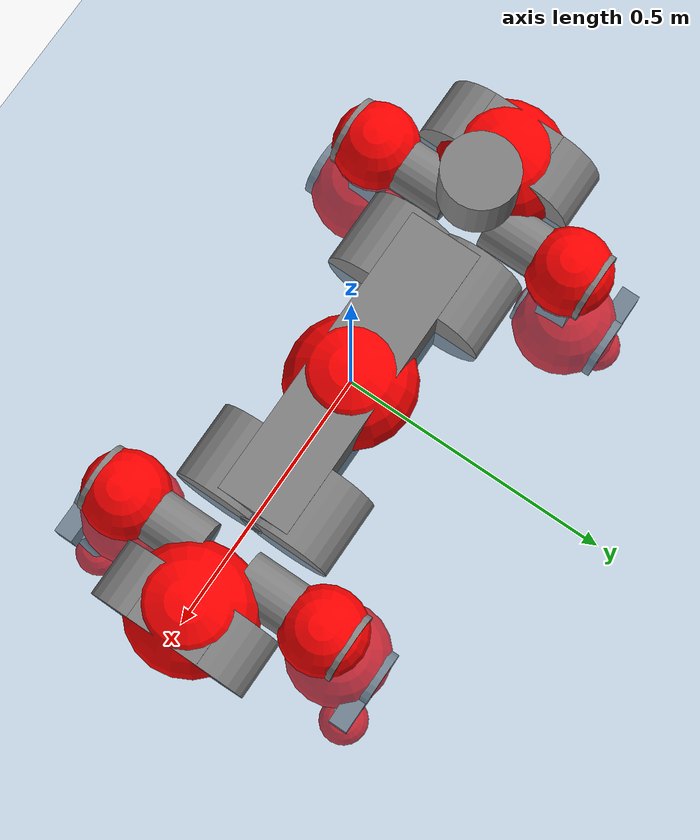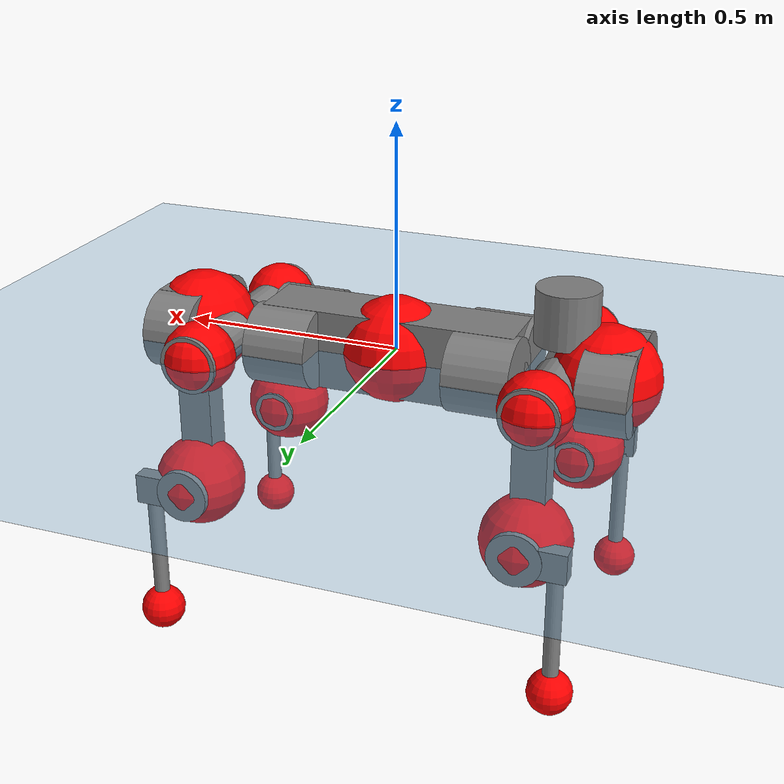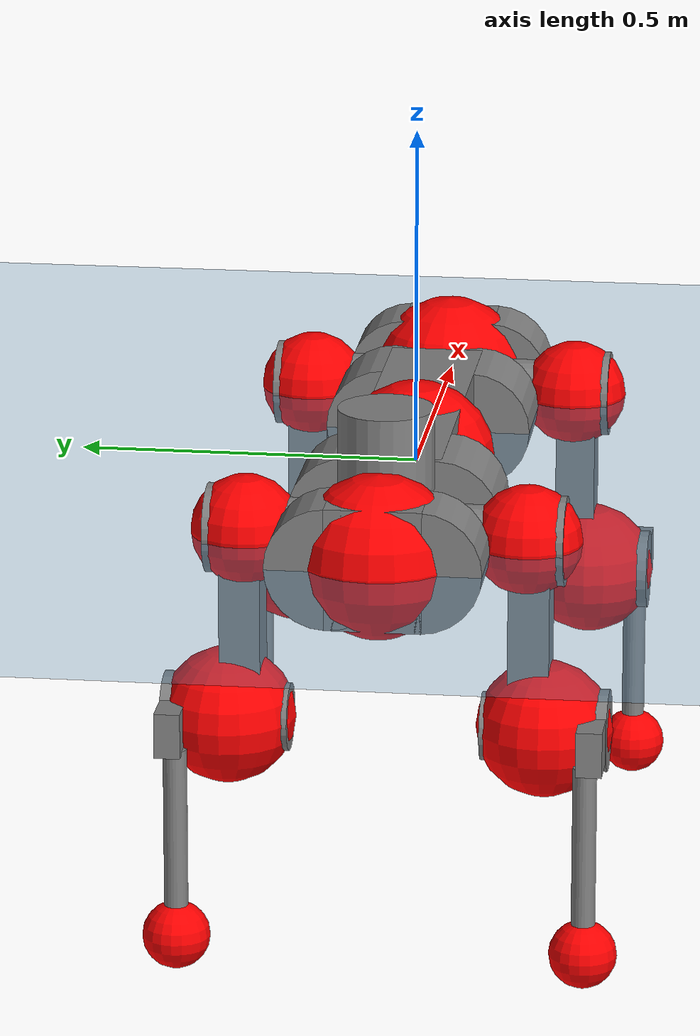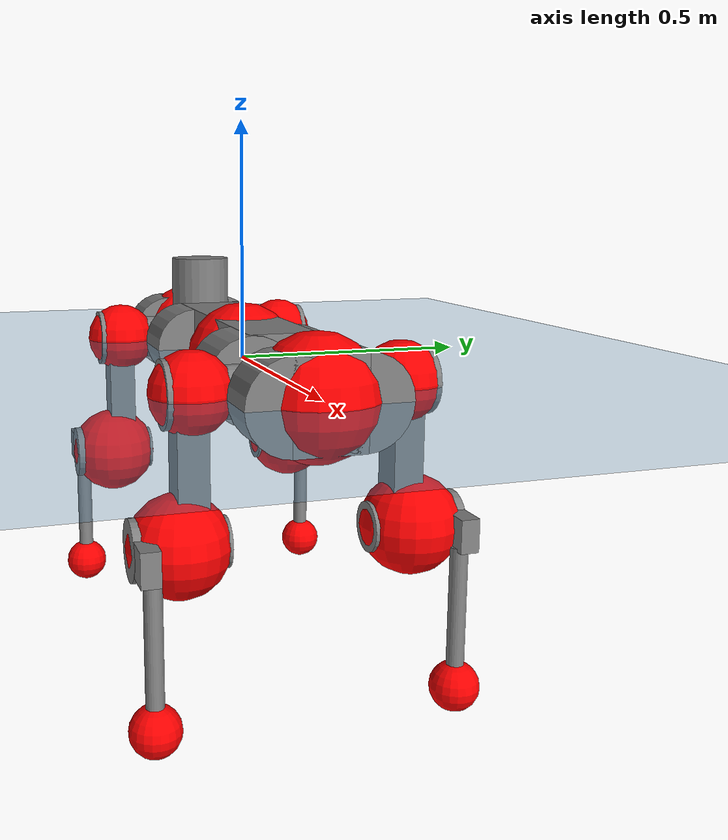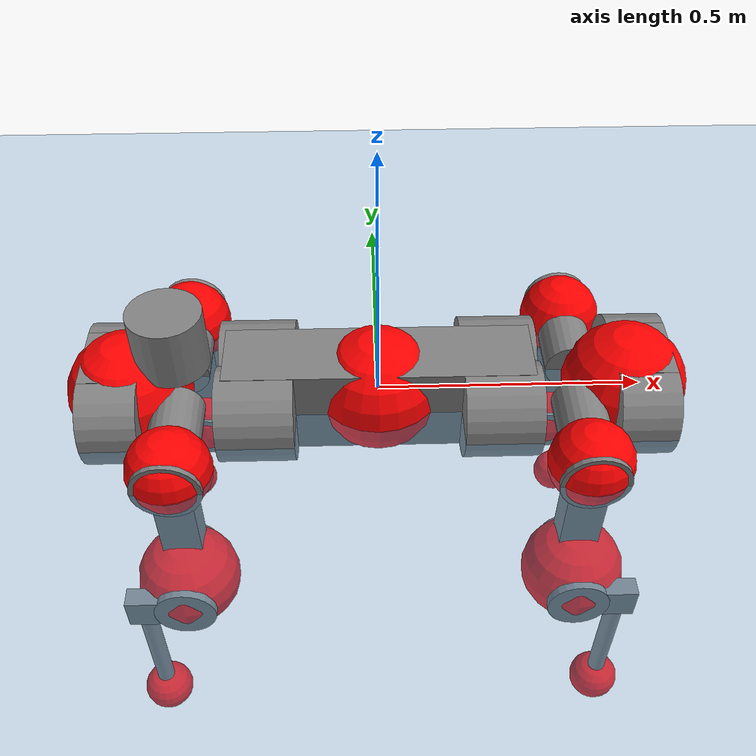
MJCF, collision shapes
<mujoco model="anymal_c">
  <compiler angle="radian" assetdir="assets" balanceinertia="true" inertiafromgeom="false"/>

  <option timestep="0.005" density="1.2" viscosity="2e-05"/>

  <size nkey="1"/>

  <visual>
    <quality shadowsize="8192"/>
    <map shadowclip="0.5"/>
  </visual>

  <default>
    <default class="/">
      <material specular="0" shininess="0.25"/>
      <geom contype="0" conaffinity="0" group="1" solref="-1000 -80"/>
      <site size="0.01 0.005 0.005" group="5"/>
      <general forcelimited="true" forcerange="-80 80" biastype="affine" gainprm="80" biasprm="0 -80 -2"/>
      <default class="anymal_c">
        <joint armature="0.01" damping="0.01" frictionloss="0.1"/>
        <default class="visual">
          <geom type="mesh" group="2"/>
          <default class="visual_zflip"/>
        </default>
        <default class="collision">
          <geom type="cylinder" group="3"/>
          <default class="foot">
            <geom size="0.03 0 0" type="sphere" condim="6" priority="1" friction="0.8 0.02 0.01" solimp="0.015 1 0.03"/>
          </default>
        </default>
      </default>
      <default class="reward_collision_sphere">
        <geom group="5" rgba="1 0 0 1"/>
      </default>
    </default>
  </default>

  <asset>
    <texture type="skybox" colorspace="auto" name="//unnamed_texture_0" builtin="gradient" rgb1="0.95 0.95 0.95" rgb2="0.95 0.95 0.95" width="100" height="600"/>
    <texture type="2d" colorspace="auto" name="texplane" builtin="checker" rgb1="0.345 0.575 0.748" rgb2="0.345 0.575 0.748" markrgb="1 1 1" width="512" height="512"/>
    <texture type="2d" colorspace="linear" name="base" file="base.png"/>
    <texture type="2d" colorspace="linear" name="top_shell" file="top_shell.png"/>
    <texture type="2d" colorspace="linear" name="bottom_shell" file="bottom_shell.png"/>
    <texture type="2d" colorspace="linear" name="remote" file="remote.png"/>
    <texture type="2d" colorspace="linear" name="hatch" file="hatch.png"/>
    <texture type="2d" colorspace="linear" name="handle" file="handle.png"/>
    <texture type="2d" colorspace="linear" name="face" file="face.png"/>
    <texture type="2d" colorspace="linear" name="battery" file="battery.png"/>
    <texture type="2d" colorspace="linear" name="lidar_cage" file="lidar_cage.png"/>
    <texture type="2d" colorspace="linear" name="depth_camera" file="depth_camera.png"/>
    <texture type="2d" colorspace="linear" name="wide_angle_camera" file="wide_angle_camera.png"/>
    <texture type="2d" colorspace="linear" name="lidar" file="lidar.png"/>
    <texture type="2d" colorspace="linear" name="drive" file="drive.png"/>
    <texture type="2d" colorspace="linear" name="hip_l" file="hip_l.png"/>
    <texture type="2d" colorspace="linear" name="shank_l" file="shank_l.png"/>
    <texture type="2d" colorspace="linear" name="foot" file="foot.png"/>
    <texture type="2d" colorspace="linear" name="thigh" file="thigh.png"/>
    <texture type="2d" colorspace="linear" name="shank_r" file="shank_r.png"/>
    <texture type="2d" colorspace="linear" name="hip_r" file="hip_r.png"/>
    <material name="MatPlane" class="/" texture="texplane" texuniform="true" texrepeat="2 2" specular="0.9" shininess="0.5"/>
    <material name="black_plastic" class="/" rgba="0.007 0.007 0.007 1"/>
    <material name="green" class="/" rgba="0.052 0.178 0.033 1"/>
    <material name="red" class="/" rgba="0.178 0.006 0.005 1"/>
    <material name="yellow" class="/" rgba="0.178 0.119 0.006 1"/>
    <material name="lwl" class="/" rgba="0.8 0.8 0.8 1"/>
    <material name="base" class="/" texture="base"/>
    <material name="top_shell" class="/" texture="top_shell"/>
    <material name="bottom_shell" class="/" texture="bottom_shell"/>
    <material name="hip_l" class="/" texture="hip_l"/>
    <material name="thigh" class="/" texture="thigh"/>
    <material name="shank_l" class="/" texture="shank_l"/>
    <material name="foot" class="/" texture="foot"/>
    <material name="hip_r" class="/" texture="hip_r"/>
    <material name="shank" class="/" texture="shank_r"/>
    <material name="hatch" class="/" texture="hatch"/>
    <material name="remote" class="/" texture="remote"/>
    <material name="handle" class="/" texture="handle"/>
    <material name="face" class="/" texture="face"/>
    <material name="depth_camera" class="/" texture="depth_camera"/>
    <material name="wide_angle_camera" class="/" texture="wide_angle_camera"/>
    <material name="battery" class="/" texture="battery"/>
    <material name="lidar_cage" class="/" texture="lidar_cage"/>
    <material name="lidar" class="/" texture="lidar"/>
    <material name="drive" class="/" texture="drive"/>
    <mesh name="base_0" class="/" file="base_0.obj"/>
    <mesh name="base_1" class="/" file="base_1.obj"/>
    <mesh name="base_2" class="/" file="base_2.obj"/>
    <mesh name="base_3" class="/" file="base_3.obj"/>
    <mesh name="base_4" class="/" file="base_4.obj"/>
    <mesh name="base_5" class="/" file="base_5.obj"/>
    <mesh name="top_shell" class="/" file="top_shell.obj"/>
    <mesh name="bottom_shell" class="/" file="bottom_shell.obj"/>
    <mesh name="remote" class="/" file="remote.obj"/>
    <mesh name="handle" class="/" file="handle.obj"/>
    <mesh name="face" class="/" file="face.obj"/>
    <mesh name="wide_angle_camera" class="/" file="wide_angle_camera.obj"/>
    <mesh name="depth_camera" class="/" file="depth_camera.obj"/>
    <mesh name="battery" class="/" file="battery.obj"/>
    <mesh name="lidar_cage" class="/" file="lidar_cage.obj"/>
    <mesh name="lidar" class="/" file="lidar.obj"/>
    <mesh name="drive" class="/" file="drive.obj"/>
    <mesh name="hip_l" class="/" file="hip_l.obj"/>
    <mesh name="thigh" class="/" file="thigh.obj"/>
    <mesh name="shank_l" class="/" file="shank_l.obj"/>
    <mesh name="foot" class="/" file="foot.obj"/>
    <mesh name="hip_r" class="/" file="hip_r.obj"/>
    <mesh name="hatch" class="/" file="hatch.obj"/>
    <mesh name="shank_r" class="/" file="shank_r.obj"/>
  </asset>

  <worldbody>
    <geom name="floor" class="/" size="100 100 0.125" type="plane" group="0" material="MatPlane"/>
    <light name="toplight_shadow" class="/" pos="0 0 5" dir="0.0990148 0.0990148 -0.990148" type="directional" ambient="0.04 0.04 0.04" diffuse="0.55 0.55 0.55" specular="0.12 0.12 0.12"/>
    <light name="toplight_fill" class="/" pos="0 0 5" dir="0.0990148 0.0990148 -0.990148" type="directional" castshadow="false" ambient="0.04 0.04 0.04" diffuse="0.3 0.3 0.3" specular="0.08 0.08 0.08"/>
    <body name="trunk" childclass="anymal_c" pos="0.000818934 0.000154772 0.000673359" quat="1 -4.24989e-05 0.000294623 0.000326401">
      <inertial pos="0.00325126 -0.000683032 0.0485735" quat="0.501897 0.499006 0.499647 0.499444" mass="18.39" diaginertia="0.789913 0.432138 0.207272"/>
      <joint name="//unnamed_joint_0" type="free" armature="0" damping="0" frictionloss="0"/>
      <geom name="//unnamed_geom_1" class="visual" material="green" mesh="base_0"/>
      <geom name="//unnamed_geom_2" class="visual" material="yellow" mesh="base_1"/>
      <geom name="//unnamed_geom_3" class="visual" material="red" mesh="base_2"/>
      <geom name="//unnamed_geom_4" class="visual" material="black_plastic" mesh="base_3"/>
      <geom name="//unnamed_geom_5" class="visual" material="lwl" mesh="base_4"/>
      <geom name="//unnamed_geom_6" class="visual" material="base" mesh="base_5"/>
      <geom name="trunk_1" class="collision" size="0.286084 0.0690548 0.0887848" type="box"/>
      <geom name="trunk_2" class="collision" size="0.0887848 0.0715211" pos="0.226595 0.0650515 0" quat="0.707107 0 0.707107 0"/>
      <geom name="trunk_3" class="collision" size="0.0887848 0.0715211" pos="-0.226595 0.0650515 0" quat="0.707107 0 0.707107 0"/>
      <geom name="trunk_4" class="collision" size="0.0887848 0.0715211" pos="0.226595 -0.0650515 0" quat="0.707107 0 0.707107 0"/>
      <geom name="trunk_5" class="collision" size="0.0887848 0.0715211" pos="-0.226595 -0.0650515 0" quat="0.707107 0 0.707107 0"/>
      <geom name="//unnamed_geom_12" class="visual" material="top_shell" mesh="top_shell"/>
      <geom name="//unnamed_geom_13" class="visual" material="bottom_shell" mesh="bottom_shell"/>
      <geom name="//unnamed_geom_14" class="visual" material="remote" mesh="remote"/>
      <geom name="//unnamed_geom_15" class="visual" material="handle" mesh="handle"/>
      <geom name="//unnamed_geom_16" class="visual" pos="0.431832 0 0" quat="1 0 0 0" material="face" mesh="face"/>
      <geom name="trunk_6" class="collision" size="0.0542574 0.0690548 0.0887848" pos="0.489132 0 0" type="box"/>
      <geom name="//unnamed_geom_18" class="collision" size="0.0887848 0.0542574" pos="0.489132 0.0650515 0" quat="0.707107 0 0.707107 0"/>
      <geom name="//unnamed_geom_19" class="collision" size="0.0887848 0.0542574" pos="0.489132 -0.0650515 0" quat="0.707107 0 0.707107 0"/>
      <geom name="//unnamed_geom_20" class="visual" pos="0.480952 0 -0.0284543" quat="0.965926 0 0.258819 0" material="depth_camera" mesh="depth_camera"/>
      <geom name="//unnamed_geom_21" class="visual" pos="0.534451 0 0.0147959" material="wide_angle_camera" mesh="wide_angle_camera"/>
      <geom name="//unnamed_geom_22" class="visual_zflip" pos="-0.431832 0 0" quat="0 0 0 1" material="face" mesh="face"/>
      <geom name="trunk_7" class="collision" size="0.0542574 0.0690548 0.0887848" pos="-0.489132 0 0" quat="0 0 0 1" type="box"/>
      <geom name="//unnamed_geom_24" class="collision" size="0.0887848 0.0542574" pos="-0.489132 -0.0650515 0" quat="0 -0.707107 0 0.707107"/>
      <geom name="//unnamed_geom_25" class="collision" size="0.0887848 0.0542574" pos="-0.489132 0.0650515 0" quat="0 -0.707107 0 0.707107"/>
      <geom name="//unnamed_geom_26" class="visual" pos="-0.480952 0 -0.0284543" quat="0 -0.258819 0 0.965926" material="depth_camera" mesh="depth_camera"/>
      <geom name="//unnamed_geom_27" class="visual_zflip" pos="-0.534451 0 0.0147959" quat="0 0 0 1" material="wide_angle_camera" mesh="wide_angle_camera"/>
      <geom name="//unnamed_geom_28" class="visual" material="battery" mesh="battery"/>
      <geom name="//unnamed_geom_29" class="visual" pos="0 0.0695762 0.0291184" quat="0.683013 -0.183013 0.183013 0.683013" material="depth_camera" mesh="depth_camera"/>
      <geom name="//unnamed_geom_30" class="visual" pos="0 -0.0695762 0.0291184" quat="0.683013 0.183013 0.183013 -0.683013" material="depth_camera" mesh="depth_camera"/>
      <geom name="//unnamed_geom_31" class="visual" pos="-0.379221 0 0.0726453" quat="1 0 0 0" material="lidar_cage" mesh="lidar_cage"/>
      <geom name="trunk_8" class="collision" size="0.0690548 0.0591899" pos="-0.379221 0 0.131948"/>
      <geom name="//unnamed_geom_33" class="visual" pos="-0.379221 -4.42016e-05 0.140546" quat="0.707107 0 0 -0.707107" material="lidar" mesh="lidar"/>
      <geom name="//unnamed_geom_34" class="visual" pos="0.31244 0.0966689 -1.01887e-09" quat="0.258819 0.965926 0 0" material="drive" mesh="drive"/>
      <geom name="//unnamed_geom_35" class="visual" pos="0.31244 -0.0966689 1.01887e-09" quat="0.258819 -0.965926 0 0" material="drive" mesh="drive"/>
      <geom name="//unnamed_geom_36" class="visual" pos="-0.31244 0.0966689 1.01887e-09" quat="0 0 0.965926 -0.258819" material="drive" mesh="drive"/>
      <geom name="//unnamed_geom_37" class="visual" pos="-0.31244 -0.0966689 -1.01887e-09" quat="0 0 -0.965926 -0.258819" material="drive" mesh="drive"/>
      <geom name="//unnamed_geom_38" class="visual" pos="0.120851 0 0.0721511" quat="1 0 0 0" material="hatch" mesh="hatch"/>
      <geom name="//unnamed_geom_39" class="reward_collision_sphere" size="0.11838"/>
      <geom name="//unnamed_geom_40" class="reward_collision_sphere" size="0.11838" pos="0.468817 0 0"/>
      <geom name="//unnamed_geom_41" class="reward_collision_sphere" size="0.11838" pos="-0.468817 0 0"/>
      <site name="imu" pos="0.255201 0.00378744 0.0457877" size="0.00986498"/>
      <camera name="track" pos="0 -1.85861 0" quat="0.707107 0.707107 0 0" mode="trackcom"/>
      <camera name="ego_camera" pos="0.468817 0 -0.0395348" quat="-0.5 -0.5 0.5 0.5"/>
      <body name="LF_HIP" pos="0.313011 0.0971636 0.000631393" quat="0.258912 0.965901 0.000208673 4.90564e-05">
        <inertial pos="0.0597665 -0.0142567 -0.00845607" quat="-0.125513 0.707909 -0.136237 0.68158" mass="2.67384" diaginertia="0.00719862 0.0034092 0.0030824"/>
        <joint name="LF_HAA" pos="0 0 0" axis="0.999997 0.00244893 -0.000475027" range="-0.717848 0.49242" armature="0.00951795" damping="0.00934785" frictionloss="0.0974445"/>
        <geom name="//unnamed_geom_42" class="visual" pos="0 -5.99357e-05 9.84439e-06" quat="0.258819 -0.965926 0 0" material="hip_l" mesh="hip_l"/>
        <geom name="//unnamed_geom_43" class="visual" pos="0.0624047 -0.0741562 -0.043251" quat="0.183013 -0.683013 0.683013 0.183013" material="drive" mesh="drive"/>
        <geom name="//unnamed_geom_44" class="collision" size="0.0493249 0.0690548" pos="0.0624047 -0.0111143 -0.0068247" quat="-0.353553 -0.612372 0.612372 -0.353553"/>
        <body name="LF_THIGH" pos="0.0626871 -0.0675079 -0.0406103" quat="0.18305 -0.682969 0.68304 0.183037">
          <inertial pos="0.0322519 -2.50663e-05 -0.243582" quat="0.993096 -0.00356497 -0.0810198 0.0847494" mass="2.92635" diaginertia="0.03719 0.0208694 0.00395818"/>
          <joint name="LF_HFE" pos="0 0 0" axis="0.999999 -0.00109519 9.48043e-05" range="-3.14138 3.14888" armature="0.0101015" damping="0.00425375" frictionloss="0.0985534"/>
          <geom name="//unnamed_geom_45" class="visual" pos="0.00223848 3.52732e-06 0" quat="0.707107 0 0 -0.707107" material="thigh" mesh="thigh"/>
          <geom name="//unnamed_geom_46" class="collision" size="0.0641223 0.0394599" pos="0.0416726 0 0" quat="0.5 0.5 -0.5 -0.5"/>
          <geom name="//unnamed_geom_47" class="collision" size="0.0369937 0.0295949 0.139406" pos="0.0312545 0 -0.139671" quat="0.707107 0 0 -0.707107" type="box"/>
          <geom name="//unnamed_geom_48" class="visual" pos="0.104494 0 -0.281686" quat="1 0 0 0" material="drive" mesh="drive"/>
          <geom name="//unnamed_geom_49" class="collision" size="0.0493249 0.0690548" pos="0.031567 0 -0.281686" quat="0.707107 0 0.707107 0"/>
          <geom name="//unnamed_geom_50" class="reward_collision_sphere" size="0.0789198" pos="0.0260454 0 0"/>
          <body name="LF_SHANK" pos="0.105487 0.000216293 -0.282545" quat="1 1.9188e-06 -1.57377e-06 1.14161e-06">
            <inertial pos="0.00531822 -0.0561263 -0.0806187" quat="0.992928 -0.115933 -0.000992933 -0.0255378" mass="0.566689" diaginertia="0.0123707 0.00637953 0.00105907"/>
            <joint name="LF_KFE" pos="0 0 0" axis="1 -0.000485569 -0.00030091" range="-3.15777 3.14289" armature="0.00987478" damping="0.00911061" frictionloss="0.0986353"/>
            <geom name="//unnamed_geom_51" class="visual" pos="0.000729919 0.00389197 0" quat="0.707107 0 0 -0.707107" material="shank_l" mesh="shank_l"/>
            <geom name="LF_kfe_act" class="collision" size="0.0591899 0.01973" pos="0.0208363 0 0" quat="0.5 0.5 -0.5 -0.5"/>
            <geom name="//unnamed_geom_53" class="collision" size="0.0567226 0.0332943 0.0187435" pos="0.0208363 -0.0534342 0" quat="0.5 0.5 -0.5 -0.5" type="box"/>
            <geom name="//unnamed_geom_54" class="visual" pos="0.0135955 -0.0804783 -0.33404" quat="0.382683 0 0 -0.92388" material="foot" mesh="foot"/>
            <geom name="LF_calf" class="collision" size="0.0172637 0.139345" pos="0.0135957 -0.0817325 -0.16702" quat="0.707107 0 0 -0.707107"/>
            <geom name="LF_foot" class="foot" size="0.0294061" pos="0.0135957 -0.0817325 -0.311801" quat="0.707107 0 0 -0.707107"/>
            <geom name="//unnamed_geom_57" class="reward_collision_sphere" size="0.0986498" pos="-0.0520908 0 0"/>
            <geom name="//unnamed_geom_58" class="reward_collision_sphere" size="0.0493249" pos="0.0135957 -0.0817325 -0.311801"/>
            <site name="LF_foot" class="foot" pos="0.0135957 -0.0817325 -0.311801" quat="0.707107 0 0 -0.707107" size="0.00986498"/>
          </body>
        </body>
      </body>
      <body name="RF_HIP" pos="0.312216 -0.0980378 0.000222837" quat="0.25878 -0.965936 -3.52167e-05 1.83185e-05">
        <inertial pos="0.0587123 0.0154564 -0.00807723" quat="0.135166 0.679154 0.127448 0.710097" mass="2.68027" diaginertia="0.00728079 0.00340942 0.0031299"/>
        <joint name="RF_HAA" pos="0 0 0" axis="0.999999 0.000689092 0.00100184" range="-0.5085 0.717185" armature="0.00987899" damping="0.00874005" frictionloss="0.099231"/>
        <geom name="//unnamed_geom_59" class="visual" pos="0 5.99352e-05 9.84436e-06" quat="0.258819 0.965926 0 0" material="hip_r" mesh="hip_r"/>
        <geom name="//unnamed_geom_60" class="visual" pos="0.0624047 0.0741562 -0.043251" quat="0.183013 0.683013 0.683013 -0.183013" material="drive" mesh="drive"/>
        <geom name="//unnamed_geom_61" class="collision" size="0.0493249 0.0690548" pos="0.0624047 0.0111143 -0.0068247" quat="-0.353553 0.612372 0.612372 0.353553"/>
        <body name="RF_THIGH" pos="0.0621052 0.0675226 -0.0408052" quat="0.182993 0.683022 0.683017 -0.182982">
          <inertial pos="0.0320601 -2.99042e-05 -0.242895" quat="0.993044 -0.00226436 -0.0811041 0.085326" mass="2.96605" diaginertia="0.0375733 0.0207851 0.00395826"/>
          <joint name="RF_HFE" pos="0 0 0" axis="1 0.000351661 0.00072316" stiffness="0.00609973" range="-3.14681 3.12813" armature="0.0101549" damping="0.0101781" frictionloss="0.101063"/>
          <geom name="//unnamed_geom_62" class="visual" pos="0.00223848 3.52732e-06 0" quat="0.707107 0 0 -0.707107" material="thigh" mesh="thigh"/>
          <geom name="//unnamed_geom_63" class="collision" size="0.0641223 0.0394599" pos="0.0416726 0 0" quat="0.5 0.5 0.5 0.5"/>
          <geom name="//unnamed_geom_64" class="collision" size="0.0369937 0.0295949 0.139406" pos="0.0312545 0 -0.139671" quat="0.707107 0 0 0.707107" type="box"/>
          <geom name="//unnamed_geom_65" class="visual" pos="0.104494 0 -0.281686" quat="1 0 0 0" material="drive" mesh="drive"/>
          <geom name="//unnamed_geom_66" class="collision" size="0.0493249 0.0690548" pos="0.031567 0 -0.281686" quat="0.707107 0 0.707107 0"/>
          <geom name="//unnamed_geom_67" class="reward_collision_sphere" size="0.0789198" pos="0.0260454 0 0"/>
          <body name="RF_SHANK" pos="0.104299 0.000163122 -0.28176" quat="1 7.66825e-06 5.51845e-06 4.22821e-06">
            <inertial pos="0.00638858 0.0568957 -0.0785749" quat="0.992891 0.115426 0.000254905 0.0290436" mass="0.563118" diaginertia="0.0122877 0.00638745 0.00104395"/>
            <joint name="RF_KFE" pos="0 0 0" axis="0.999998 -0.00147773 -0.00113247" range="-3.14292 3.15194" armature="0.00949942" damping="0.00911029" frictionloss="0.0984687"/>
            <geom name="//unnamed_geom_68" class="visual" pos="0.000729915 -0.00389196 0" quat="0.707107 0 0 0.707107" material="shank" mesh="shank_r"/>
            <geom name="RF_kfe_act" class="collision" size="0.0591899 0.01973" pos="0.0208363 0 0" quat="0.5 0.5 0.5 0.5"/>
            <geom name="//unnamed_geom_70" class="collision" size="0.0567226 0.0332943 0.0187435" pos="0.0208363 0.0534342 0" quat="0.5 0.5 0.5 0.5" type="box"/>
            <geom name="//unnamed_geom_71" class="visual" pos="0.0135959 0.0804783 -0.33404" quat="0.382683 0 0 0.92388" material="foot" mesh="foot"/>
            <geom name="RF_calf" class="collision" size="0.0172637 0.139345" pos="0.0135957 0.0817325 -0.16702" quat="0.707107 0 0 0.707107"/>
            <geom name="RF_foot" class="foot" size="0.0299355" pos="0.0135957 0.0817325 -0.311801" quat="0.707107 0 0 0.707107"/>
            <geom name="//unnamed_geom_74" class="reward_collision_sphere" size="0.0986498" pos="-0.0520908 0 0"/>
            <geom name="//unnamed_geom_75" class="reward_collision_sphere" size="0.0493249" pos="0.0135957 0.0817325 -0.311801"/>
            <site name="RF_foot" class="foot" pos="0.0135957 0.0817325 -0.311801" quat="0.707107 0 0 0.707107" size="0.00986498"/>
          </body>
        </body>
      </body>
      <body name="LH_HIP" pos="-0.312049 0.0972293 0.000398583" quat="-4.31788e-05 -7.2025e-05 0.96593 -0.258805">
        <inertial pos="0.0593262 0.0142884 -0.00824273" quat="0.134972 0.678979 0.127798 0.710237" mass="2.67006" diaginertia="0.00716651 0.00344795 0.00309267"/>
        <joint name="LH_HAA" pos="0 0 0" axis="0.999999 -5.81802e-05 -0.00134947" range="-0.482483 0.722483" armature="0.00979276" damping="0.0134016" frictionloss="0.0984689"/>
        <geom name="//unnamed_geom_76" class="visual" pos="0 5.99352e-05 9.84436e-06" quat="-0.258819 -0.965926 0 0" material="hip_r" mesh="hip_r"/>
        <geom name="//unnamed_geom_77" class="visual" pos="0.0624047 0.0741562 -0.043251" quat="0.183013 0.683013 0.683013 -0.183013" material="drive" mesh="drive"/>
        <geom name="//unnamed_geom_78" class="collision" size="0.0493249 0.0690548" pos="0.0624047 0.0111143 -0.0068247" quat="-0.353553 0.612372 0.612372 0.353553"/>
        <body name="LH_THIGH" pos="0.061808 0.066917 -0.0413596" quat="0.182919 0.683044 0.682977 -0.183122">
          <inertial pos="0.0323396 7.42755e-05 -0.243369" quat="0.992742 -0.0051177 -0.0805489 0.0891528" mass="2.92192" diaginertia="0.0368813 0.0206575 0.00393115"/>
          <joint name="LH_HFE" pos="0 0 0" axis="1 8.26868e-06 -0.000311773" stiffness="0.00156198" range="-3.14149 3.12999" armature="0.00981952" damping="0.00979013" frictionloss="0.0976549"/>
          <geom name="//unnamed_geom_79" class="visual" pos="0.00223848 3.52732e-06 0" quat="0.707107 0 0 -0.707107" material="thigh" mesh="thigh"/>
          <geom name="//unnamed_geom_80" class="collision" size="0.0641223 0.0394599" pos="0.0416726 0 0" quat="0.5 0.5 -0.5 -0.5"/>
          <geom name="//unnamed_geom_81" class="collision" size="0.0369937 0.0295949 0.139406" pos="0.0312545 0 -0.139671" quat="0.707107 0 0 -0.707107" type="box"/>
          <geom name="//unnamed_geom_82" class="visual" pos="0.104494 0 -0.281686" quat="1 0 0 0" material="drive" mesh="drive"/>
          <geom name="//unnamed_geom_83" class="collision" size="0.0493249 0.0690548" pos="0.031567 0 -0.281686" quat="0.707107 0 0.707107 0"/>
          <geom name="//unnamed_geom_84" class="reward_collision_sphere" size="0.0789198" pos="0.0260454 0 0"/>
          <body name="LH_SHANK" pos="0.105166 -0.000975147 -0.281233" quat="1 3.67227e-05 -2.48609e-05 9.8321e-05">
            <inertial pos="0.00486791 0.0577534 -0.0805358" quat="0.992794 0.117298 0.00123786 0.0244791" mass="0.569065" diaginertia="0.0124613 0.00637332 0.00105276"/>
            <joint name="LH_KFE" pos="0 0 0" axis="1 -0.000354621 0.000150479" range="-3.13899 3.13988" armature="0.00992233" damping="0.0107599" frictionloss="0.0944949"/>
            <geom name="//unnamed_geom_85" class="visual" pos="0.000729915 -0.00389196 0" quat="-0.707107 0 0 -0.707107" material="shank" mesh="shank_r"/>
            <geom name="LH_kfe_act" class="collision" size="0.0591899 0.01973" pos="0.0208363 0 0" quat="0.5 0.5 -0.5 -0.5"/>
            <geom name="//unnamed_geom_87" class="collision" size="0.0567226 0.0332943 0.0187435" pos="0.0208363 0.0534342 0" quat="0.5 0.5 -0.5 -0.5" type="box"/>
            <geom name="//unnamed_geom_88" class="visual" pos="0.0135959 0.0804783 -0.33404" quat="-0.382683 0 0 -0.92388" material="foot" mesh="foot"/>
            <geom name="LH_calf" class="collision" size="0.0172637 0.139345" pos="0.0135957 0.0817325 -0.16702" quat="0.707107 0 0 -0.707107"/>
            <geom name="LH_foot" class="foot" size="0.0308097" pos="0.0135957 0.0817325 -0.311801" quat="0.707107 0 0 -0.707107"/>
            <geom name="//unnamed_geom_91" class="reward_collision_sphere" size="0.0986498" pos="-0.0520908 0 0"/>
            <geom name="//unnamed_geom_92" class="reward_collision_sphere" size="0.0493249" pos="0.0135957 0.0817325 -0.311801"/>
            <site name="LH_foot" class="foot" pos="0.0135957 0.0817325 -0.311801" quat="0.707107 0 0 -0.707107" size="0.00986498"/>
          </body>
        </body>
      </body>
      <body name="RH_HIP" pos="-0.312384 -0.0964797 -5.97945e-05" quat="-7.61776e-05 3.28442e-05 -0.965909 -0.258883">
        <inertial pos="0.0592166 -0.0144615 -0.00756979" quat="-0.127969 0.709749 -0.135262 0.6794" mass="2.63707" diaginertia="0.00710705 0.0033661 0.00307814"/>
        <joint name="RH_HAA" pos="0 0 0" axis="1 0.000355232 -0.000164972" range="-0.722183 0.503354" armature="0.0102762" damping="0.0106133" frictionloss="0.098689"/>
        <geom name="//unnamed_geom_93" class="visual" pos="0 -5.99357e-05 9.84439e-06" quat="-0.258819 0.965926 0 0" material="hip_l" mesh="hip_l"/>
        <geom name="//unnamed_geom_94" class="visual" pos="0.0624047 -0.0741562 -0.043251" quat="-0.183013 0.683013 -0.683013 -0.183013" material="drive" mesh="drive"/>
        <geom name="//unnamed_geom_95" class="collision" size="0.0493249 0.0690548" pos="0.0624047 -0.0111143 -0.0068247" quat="0.353553 0.612372 -0.612372 0.353553"/>
        <body name="RH_THIGH" pos="0.0627536 -0.067651 -0.0414498" quat="-0.18304 0.683028 -0.68297 -0.183089">
          <inertial pos="0.0331964 -0.000864983 -0.242706" quat="0.99313 -0.00505366 -0.0806294 0.0846506" mass="2.98457" diaginertia="0.037119 0.0209018 0.00394408"/>
          <joint name="RH_HFE" pos="0 0 0" axis="0.999996 -6.027e-05 0.00279722" range="-3.14449 3.14424" armature="0.00986117" damping="0.00770434" frictionloss="0.100943"/>
          <geom name="//unnamed_geom_96" class="visual" pos="0.00223848 3.52732e-06 0" quat="0.707107 0 0 -0.707107" material="thigh" mesh="thigh"/>
          <geom name="//unnamed_geom_97" class="collision" size="0.0641223 0.0394599" pos="0.0416726 0 0" quat="0.5 0.5 0.5 0.5"/>
          <geom name="//unnamed_geom_98" class="collision" size="0.0369937 0.0295949 0.139406" pos="0.0312545 0 -0.139671" quat="0.707107 0 0 0.707107" type="box"/>
          <geom name="//unnamed_geom_99" class="visual" pos="0.104494 0 -0.281686" quat="1 0 0 0" material="drive" mesh="drive"/>
          <geom name="//unnamed_geom_100" class="collision" size="0.0493249 0.0690548" pos="0.031567 0 -0.281686" quat="0.707107 0 0.707107 0"/>
          <geom name="//unnamed_geom_101" class="reward_collision_sphere" size="0.0789198" pos="0.0260454 0 0"/>
          <body name="RH_SHANK" pos="0.10441 0.000309321 -0.281646" quat="1 -0.000154405 -4.24053e-05 -0.000113433">
            <inertial pos="0.00579662 -0.0568696 -0.0796344" quat="0.992915 -0.11584 -0.000622388 -0.0264608" mass="0.576251" diaginertia="0.0125344 0.00649486 0.00106326"/>
            <joint name="RH_KFE" pos="0 0 0" axis="0.999973 -0.00324904 0.00653227" range="-3.12664 3.11933" armature="0.0101108" damping="0.00157169" frictionloss="0.0976259"/>
            <geom name="//unnamed_geom_102" class="visual" pos="0.000729919 0.00389197 0" quat="0.707107 0 0 -0.707107" material="shank_l" mesh="shank_l"/>
            <geom name="RH_kfe_act" class="collision" size="0.0591899 0.01973" pos="0.0208363 0 0" quat="0.5 0.5 0.5 0.5"/>
            <geom name="//unnamed_geom_104" class="collision" size="0.0567226 0.0332943 0.0187435" pos="0.0208363 -0.0534342 0" quat="0.5 0.5 0.5 0.5" type="box"/>
            <geom name="//unnamed_geom_105" class="visual" pos="0.0135955 -0.0804783 -0.33404" quat="0.382683 0 0 -0.92388" material="foot" mesh="foot"/>
            <geom name="RH_calf" class="collision" size="0.0172637 0.139345" pos="0.0135957 -0.0817325 -0.16702" quat="0.707107 0 0 0.707107"/>
            <geom name="RH_foot" class="foot" size="0.0280501" pos="0.0135957 -0.0817325 -0.311801" quat="0.707107 0 0 0.707107"/>
            <geom name="//unnamed_geom_108" class="reward_collision_sphere" size="0.0986498" pos="-0.0520908 0 0"/>
            <geom name="//unnamed_geom_109" class="reward_collision_sphere" size="0.0493249" pos="0.0135957 -0.0817325 -0.311801"/>
            <site name="RH_foot" class="foot" pos="0.0135957 -0.0817325 -0.311801" quat="0.707107 0 0 0.707107" size="0.00986498"/>
          </body>
        </body>
      </body>
    </body>
  </worldbody>

  <contact>
    <pair class="/" geom1="floor" geom2="LF_foot" name="//unnamed_contact_0"/>
    <pair class="/" geom1="floor" geom2="RF_foot" name="//unnamed_contact_1"/>
    <pair class="/" geom1="floor" geom2="LH_foot" name="//unnamed_contact_2"/>
    <pair class="/" geom1="floor" geom2="RH_foot" name="//unnamed_contact_3"/>
  </contact>

  <actuator>
    <general name="LF_HAA" class="/" joint="LF_HAA" forcerange="-81.081 81.081" gainprm="81.9431" biasprm="0 -81.9431 -2.00448"/>
    <general name="LF_HFE" class="/" joint="LF_HFE" forcerange="-78.5142 78.5142" gainprm="81.9431" biasprm="0 -81.9431 -2.00448"/>
    <general name="LF_KFE" class="/" joint="LF_KFE" forcerange="-80.1802 80.1802" gainprm="81.9431" biasprm="0 -81.9431 -2.00448"/>
    <general name="RF_HAA" class="/" joint="RF_HAA" forcerange="-79.5109 79.5109" gainprm="81.9431" biasprm="0 -81.9431 -2.00448"/>
    <general name="RF_HFE" class="/" joint="RF_HFE" forcerange="-77.4331 77.4331" gainprm="81.9431" biasprm="0 -81.9431 -2.00448"/>
    <general name="RF_KFE" class="/" joint="RF_KFE" forcerange="-82.1593 82.1593" gainprm="81.9431" biasprm="0 -81.9431 -2.00448"/>
    <general name="LH_HAA" class="/" joint="LH_HAA" forcerange="-80.2368 80.2368" gainprm="81.9431" biasprm="0 -81.9431 -2.00448"/>
    <general name="LH_HFE" class="/" joint="LH_HFE" forcerange="-76.8712 76.8712" gainprm="81.9431" biasprm="0 -81.9431 -2.00448"/>
    <general name="LH_KFE" class="/" joint="LH_KFE" forcerange="-79.9 79.9" gainprm="81.9431" biasprm="0 -81.9431 -2.00448"/>
    <general name="RH_HAA" class="/" joint="RH_HAA" forcerange="-79.615 79.615" gainprm="81.9431" biasprm="0 -81.9431 -2.00448"/>
    <general name="RH_HFE" class="/" joint="RH_HFE" forcerange="-77.6029 77.6029" gainprm="81.9431" biasprm="0 -81.9431 -2.00448"/>
    <general name="RH_KFE" class="/" joint="RH_KFE" forcerange="-80.6986 80.6986" gainprm="81.9431" biasprm="0 -81.9431 -2.00448"/>
  </actuator>

  <sensor>
    <gyro site="imu" name="imu_angular_velocity"/>
    <velocimeter site="imu" name="imu_linear_velocity"/>
    <framelinvel objtype="site" objname="LF_foot" name="LF_foot_global_linear_velocity"/>
    <framelinvel objtype="site" objname="RF_foot" name="RF_foot_global_linear_velocity"/>
    <framelinvel objtype="site" objname="LH_foot" name="LH_foot_global_linear_velocity"/>
    <framelinvel objtype="site" objname="RH_foot" name="RH_foot_global_linear_velocity"/>
  </sensor>

  <keyframe>
    <key name="home" qpos="0 0 0.55 1 0 0 0 0 0.4 -0.8 0 -0.4 0.8 0 -0.4 0.8 0 0.4 -0.8"/>
  </keyframe>
</mujoco>
